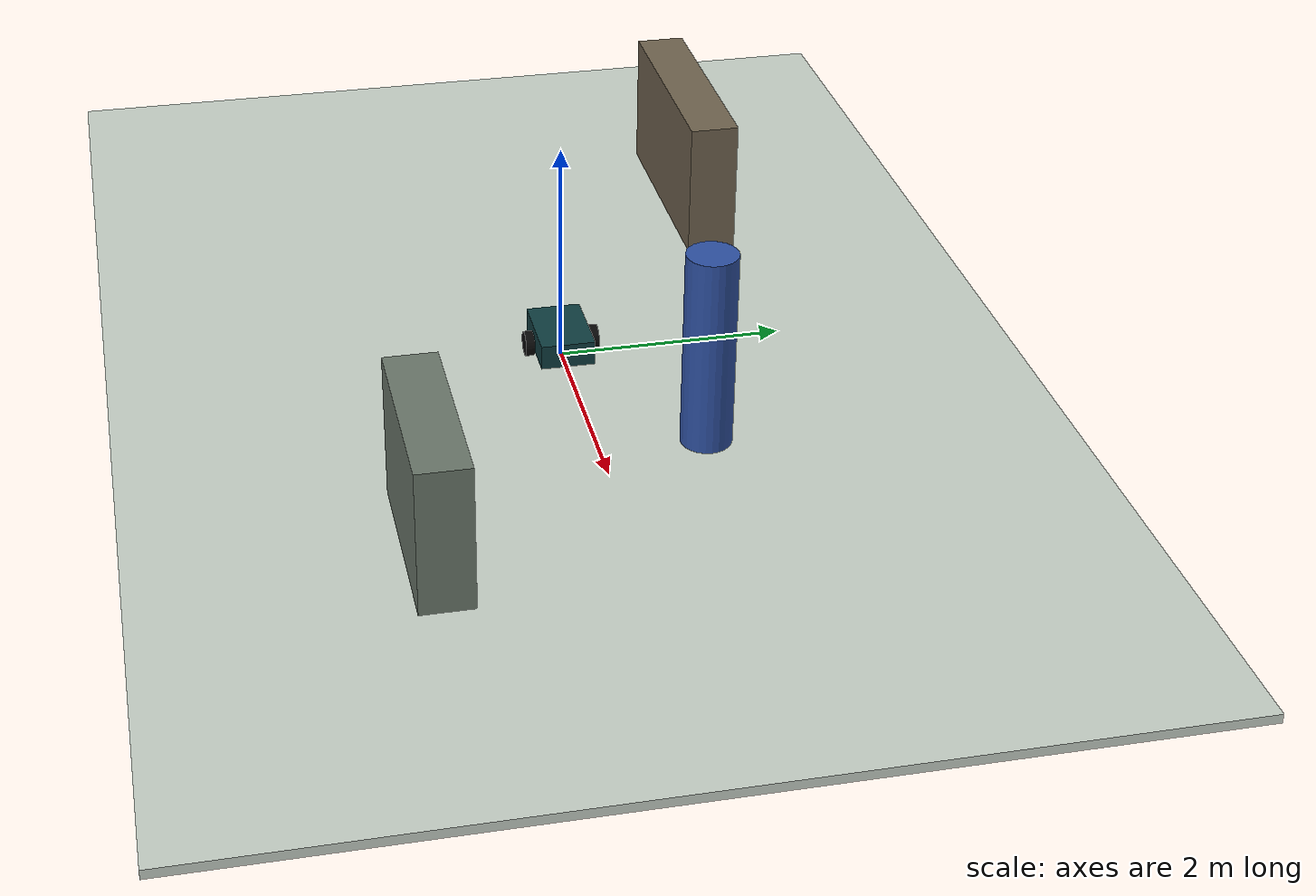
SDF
<?xml version="1.0" ?>
<sdf version="1.9">
  <world name="teleop_safety_lab">
    <gravity>0 0 -9.8</gravity>
    <magnetic_field>6e-06 2.3e-05 -4.2e-05</magnetic_field>
    <atmosphere type="adiabatic"/>

    <plugin filename="gz-sim-physics-system" name="gz::sim::systems::Physics"/>
    <plugin filename="gz-sim-user-commands-system" name="gz::sim::systems::UserCommands"/>
    <plugin filename="gz-sim-scene-broadcaster-system" name="gz::sim::systems::SceneBroadcaster"/>
    <plugin filename="gz-sim-sensors-system" name="gz::sim::systems::Sensors">
      <render_engine>ogre2</render_engine>
    </plugin>

    <light name="key_light" type="directional">
      <cast_shadows>true</cast_shadows>
      <pose>0 0 8 0.4 0.2 0</pose>
      <diffuse>0.9 0.9 0.86 1</diffuse>
      <specular>0.2 0.2 0.2 1</specular>
      <direction>-0.4 0.3 -1</direction>
    </light>

    <model name="floor">
      <static>true</static>
      <link name="floor_link">
        <collision name="floor_collision">
          <geometry>
            <box>
              <size>12 8 0.08</size>
            </box>
          </geometry>
        </collision>
        <visual name="floor_visual">
          <geometry>
            <box>
              <size>12 8 0.08</size>
            </box>
          </geometry>
          <material>
            <ambient>0.78 0.82 0.78 1</ambient>
            <diffuse>0.78 0.82 0.78 1</diffuse>
          </material>
        </visual>
      </link>
    </model>

    <model name="human_proxy">
      <static>true</static>
      <pose>1.7 0.9 0.9 0 0 0</pose>
      <link name="body">
        <collision name="collision">
          <geometry>
            <cylinder>
              <radius>0.22</radius>
              <length>1.8</length>
            </cylinder>
          </geometry>
        </collision>
        <visual name="visual">
          <geometry>
            <cylinder>
              <radius>0.22</radius>
              <length>1.8</length>
            </cylinder>
          </geometry>
          <material>
            <ambient>0.18 0.32 0.64 1</ambient>
            <diffuse>0.18 0.32 0.64 1</diffuse>
          </material>
        </visual>
      </link>
    </model>

    <model name="rack_left">
      <static>true</static>
      <pose>-2.7 1.8 0.65 0 0 0</pose>
      <link name="rack">
        <collision name="collision">
          <geometry>
            <box>
              <size>2.2 0.45 1.3</size>
            </box>
          </geometry>
        </collision>
        <visual name="visual">
          <geometry>
            <box>
              <size>2.2 0.45 1.3</size>
            </box>
          </geometry>
          <material>
            <ambient>0.44 0.39 0.31 1</ambient>
            <diffuse>0.44 0.39 0.31 1</diffuse>
          </material>
        </visual>
      </link>
    </model>

    <model name="rack_right">
      <static>true</static>
      <pose>2.8 -1.6 0.65 0 0 0</pose>
      <link name="rack">
        <collision name="collision">
          <geometry>
            <box>
              <size>1.7 0.45 1.3</size>
            </box>
          </geometry>
        </collision>
        <visual name="visual">
          <geometry>
            <box>
              <size>1.7 0.45 1.3</size>
            </box>
          </geometry>
          <material>
            <ambient>0.42 0.47 0.42 1</ambient>
            <diffuse>0.42 0.47 0.42 1</diffuse>
          </material>
        </visual>
      </link>
    </model>

    <model name="safety_bot">
      <pose>0 0 0.18 0 0 0</pose>
      <link name="base_link">
        <inertial>
          <mass>16</mass>
          <inertia>
            <ixx>0.42</ixx>
            <iyy>0.58</iyy>
            <izz>0.72</izz>
          </inertia>
        </inertial>
        <collision name="base_collision">
          <geometry>
            <box>
              <size>0.7 0.48 0.22</size>
            </box>
          </geometry>
        </collision>
        <visual name="base_visual">
          <geometry>
            <box>
              <size>0.7 0.48 0.22</size>
            </box>
          </geometry>
          <material>
            <ambient>0.06 0.24 0.25 1</ambient>
            <diffuse>0.06 0.24 0.25 1</diffuse>
          </material>
        </visual>
        <sensor name="front_lidar" type="gpu_lidar">
          <pose>0.34 0 0.18 0 0 0</pose>
          <topic>/scan</topic>
          <update_rate>15</update_rate>
          <ray>
            <scan>
              <horizontal>
                <samples>181</samples>
                <resolution>1</resolution>
                <min_angle>-1.5708</min_angle>
                <max_angle>1.5708</max_angle>
              </horizontal>
            </scan>
            <range>
              <min>0.08</min>
              <max>8</max>
              <resolution>0.01</resolution>
            </range>
          </ray>
        </sensor>
      </link>

      <link name="left_wheel">
        <pose>0 0.29 -0.04 1.5708 0 0</pose>
        <inertial>
          <mass>1.4</mass>
          <inertia>
            <ixx>0.01</ixx>
            <iyy>0.01</iyy>
            <izz>0.01</izz>
          </inertia>
        </inertial>
        <collision name="collision">
          <geometry>
            <cylinder>
              <radius>0.11</radius>
              <length>0.08</length>
            </cylinder>
          </geometry>
        </collision>
        <visual name="visual">
          <geometry>
            <cylinder>
              <radius>0.11</radius>
              <length>0.08</length>
            </cylinder>
          </geometry>
          <material>
            <ambient>0.03 0.03 0.03 1</ambient>
            <diffuse>0.03 0.03 0.03 1</diffuse>
          </material>
        </visual>
      </link>

      <link name="right_wheel">
        <pose>0 -0.29 -0.04 1.5708 0 0</pose>
        <inertial>
          <mass>1.4</mass>
          <inertia>
            <ixx>0.01</ixx>
            <iyy>0.01</iyy>
            <izz>0.01</izz>
          </inertia>
        </inertial>
        <collision name="collision">
          <geometry>
            <cylinder>
              <radius>0.11</radius>
              <length>0.08</length>
            </cylinder>
          </geometry>
        </collision>
        <visual name="visual">
          <geometry>
            <cylinder>
              <radius>0.11</radius>
              <length>0.08</length>
            </cylinder>
          </geometry>
          <material>
            <ambient>0.03 0.03 0.03 1</ambient>
            <diffuse>0.03 0.03 0.03 1</diffuse>
          </material>
        </visual>
      </link>

      <joint name="left_wheel_joint" type="revolute">
        <parent>base_link</parent>
        <child>left_wheel</child>
        <axis>
          <xyz>0 1 0</xyz>
        </axis>
      </joint>

      <joint name="right_wheel_joint" type="revolute">
        <parent>base_link</parent>
        <child>right_wheel</child>
        <axis>
          <xyz>0 1 0</xyz>
        </axis>
      </joint>

      <plugin filename="gz-sim-diff-drive-system" name="gz::sim::systems::DiffDrive">
        <left_joint>left_wheel_joint</left_joint>
        <right_joint>right_wheel_joint</right_joint>
        <wheel_separation>0.58</wheel_separation>
        <wheel_radius>0.11</wheel_radius>
        <topic>/model/safety_bot/cmd_vel</topic>
        <odom_topic>/model/safety_bot/odometry</odom_topic>
        <tf_topic>/model/safety_bot/tf</tf_topic>
        <frame_id>odom</frame_id>
        <child_frame_id>base_link</child_frame_id>
        <odom_publish_frequency>30</odom_publish_frequency>
      </plugin>

      <plugin filename="gz-sim-joint-state-publisher-system" name="gz::sim::systems::JointStatePublisher"/>
    </model>
  </world>
</sdf>
